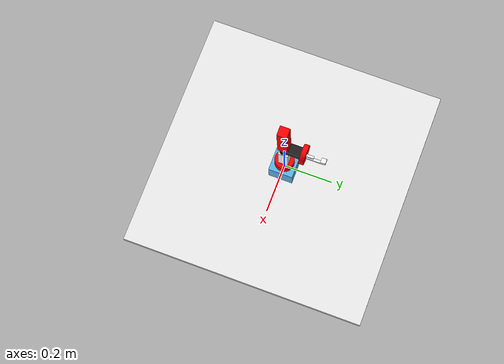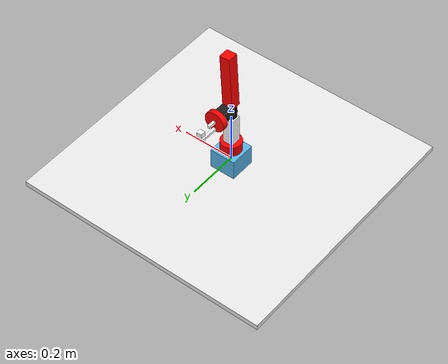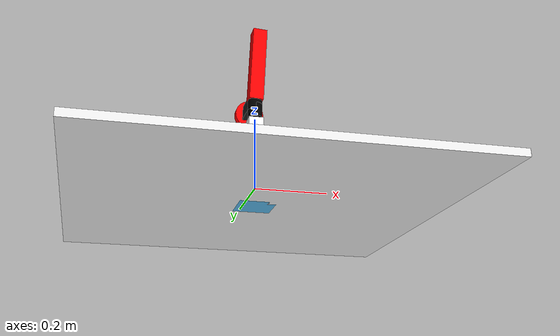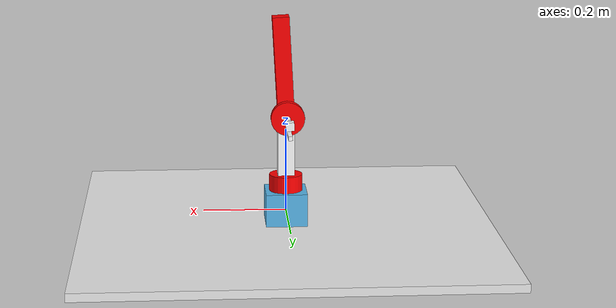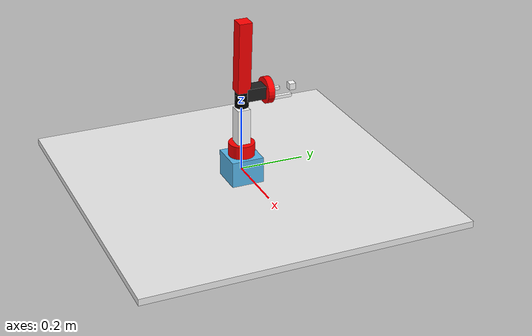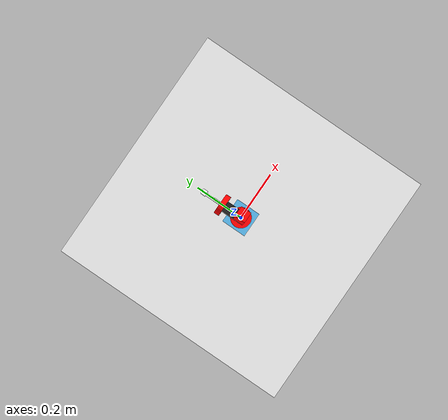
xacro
<?xml version="1.0"?>
<robot name="seven_dof_arm" xmlns:xacro="http://www.ros.org/wiki/xacro">

  <material name="Black">
	<color rgba="0 0 0 1"/>
  </material>

  <material name="Red">
	<color rgba="1 0 0 1"/>
  </material>

  <material name="White">
	<color rgba="1 1 1 1"/>
  </material>

  <xacro:property name="deg_to_rad" value="0.01745329251994329577"/>

  <!-- Constants -->
  <xacro:property name="M_SCALE" value="0.001 0.001 0.001 0.001"/>
  <xacro:property name="M_PI" value="3.14159265398979"/>

  <xacro:property name="shoulder_pan_width" value="0.04"/>
  <xacro:property name="shoulder_pan_len" value="0.08"/>

  <xacro:property name="shoulder_pitch_len" value="0.14"/>
  <xacro:property name="shoulder_pitch_width" value="0.04"/>
  <xacro:property name="shoulder_pitch_height" value="0.04"/>

  <xacro:property name="elbow_roll_width" value="0.02"/>
  <xacro:property name="elbow_roll_len" value="0.04"/>

  <xacro:property name="elbow_pitch_len" value="0.22"/>
  <xacro:property name="elbow_pitch_width" value="0.04"/>
  <xacro:property name="elbow_pitch_height" value="0.04"/>

  <xacro:property name="wrist_roll_width" value="0.02"/>
  <xacro:property name="wrist_roll_len" value="0.04"/>

  <xacro:property name="wrist_pitch_len" value="0.06"/>
  <xacro:property name="wrist_pitch_width" value="0.04"/>
  <xacro:property name="wrist_pitch_height" value="0.04"/>

  <xacro:property name="gripper_roll_width" value="0.04"/>
  <xacro:property name="gripper_roll_len" value="0.02"/>

  <xacro:property name="left_gripper_len" value="0.08"/>
  <xacro:property name="left_gripper_width" value="0.01"/>
  <xacro:property name="left_gripper_height" value="0.01"/>

  <xacro:property name="right_gripper_len" value="0.08"/>
  <xacro:property name="right_gripper_width" value="0.01"/>
  <xacro:property name="right_gripper_height" value="0.01"/>

  <xacro:property name="grasp_frame_len" value="0.02"/>
  <xacro:property name="grasp_frame_width" value="0.02"/>
  <xacro:property name="grasp_frame_height" value="0.02"/>

  <xacro:macro name="inertial_matrix" params="mass">
	<inertial>
	  <mass value="${mass}"/>
	  <inertia ixx="1.0" ixy="0.0" ixz="0.0" iyy="1.0" iyz="0.0" izz="1.0"/>
	</inertial>
  </xacro:macro>

  <xacro:macro name="transmission_block" params="joint_name">
	<transmission name="tran1">
	  <type>transmission_interface/SimpleTransmission</type>
	  <joint name="${joint_name}">
		<hardwareInterface>PositionJointInterface</hardwareInterface>
	  </joint>
	  <actuator name="motor1">
		<hardwareInterface>PositionJointInterface</hardwareInterface>
		<mechanicalReduction>1</mechanicalReduction>
	  </actuator>
	</transmission>
  </xacro:macro>
  <joint name="bottom_joint" type="fixed">
	<origin xyz="0 0 0" rpy="0 0 0"/>
	<parent link="base_link"/>
	<child link="bottom_link"/>
  </joint>

  <link name="bottom_link">
	<visual>
	  <origin xyz="0 0 -0.04" rpy="0 0 0"/>
	  <geometry>
		<box size="1 1 0.02"/>
	  </geometry>
	</visual>

	<collision>
	  <origin xyz="0 0 -0.04"/>
	  <geometry>
		<box size="1 1 0.02"/>
	  </geometry>
	</collision>
  </link>

  <gazebo reference="bottom_link">
	<material>Gazebo/White</material>
  </gazebo>

  <link name="base_link">
	<visual>
	  <origin xyz="0 0 0" rpy="${M_PI/2} 0 0"/>
	  <geometry>
		<box size="0.1 0.1 0.1"/>
	  </geometry>
	</visual>

	<collision>
	  <origin xyz="0 0 0" rpy="${M_PI/2} 0 0"/>
	  <geometry>
		<box size="0.1 0.1 0.1"/>
	  </geometry>
	</collision>
	<xacro:inertial_matrix mass="1"/>
  </link>

  <gazebo reference="bottom_link">
	<material>Gazebo/White</material>
  </gazebo>

  <joint name="shoulder_pan_joint" type="revolute">
	<parent link="base_link"/>
	<child link="shoulder_pan_link"/>
	<origin xyz="0 0 0.05" rpy="0 ${M_PI/2} 0"/>
	<axis xyz="-1 0 0"/>
	<limit effort="300" velocity="20" lower="-2.61799" upper="1.98394"/>
	<dynamics damping="50" friction="1"/>
  </joint>

  <link name="shoulder_pan_link">
	<visual>
	  <origin xyz="0 0 0" rpy="0 ${M_PI/2} 0"/>
	  <geometry>
		<cylinder radius="${shoulder_pan_width}" length="${shoulder_pan_len}"/>
	  </geometry>
	  <material name="Red"/>
	</visual>

	<collision>
	  <origin xyz="0 0 0" rpy="0 ${M_PI/2} 0"/>
	  <geometry>
		<cylinder radius="${shoulder_pan_width}" length="${shoulder_pan_len}"/>
	  </geometry>
	</collision>
	<xacro:inertial_matrix mass="1"/>
  </link>

  <gazebo reference="shoulder_pan_link">
	<material>Gazebo/Red</material>
  </gazebo>

  <joint name="shoulder_pitch_joint" type="revolute">
	<parent link="shoulder_pan_link"/>
	<child link="shoulder_pitch_link"/>
	<origin xyz="-0.041 0.0021 0.0" rpy="-${M_PI/2} 0 ${M_PI/2}"/>
	<axis xyz="1 0 0"/>
	<limit effort="300" velocity="1" lower="-1.1996" upper="1.8994"/>
	<dynamics dapming="50" friction="1"/>
  </joint>

  <link name="shoulder_pitch_link">
	<visual>
	  <origin xyz="-0.002 0 0.04" rpy="0 ${M_PI/2} 0"/>
	  <geometry>
		<box size="${shoulder_pitch_len} ${shoulder_pitch_width} ${shoulder_pitch_height}"/>
	  </geometry>
	  <material name="White"/>
	</visual>

	<collision>
	  <origin xyz="-0.002 0 0.04" rpy="0 ${M_PI/2} 0"/>
	  <geometry>
		<box size="${shoulder_pitch_len} ${shoulder_pitch_width} ${shoulder_pitch_height}"/>
	  </geometry>
	</collision>
	<xacro:inertial_matrix mass="1"/>
  </link>

  <gazebo reference="shoulder_pitch_link">
	<material>Gazebo/White</material>
  </gazebo>

  <joint name="elbow_roll_joint" type="revolute">
	<parent link="shoulder_pitch_link"/>
	<child link="elbow_roll_link"/>
	<origin xyz="-0.002 0 0.1206" rpy="${M_PI} ${M_PI/2} 0"/>
	<axis xyz="-1 0 0"/>
	<limit effort="300" velocity="1" lower="-2.61799" upper="0.70563"/>
	<dynamics damping="50" friction="1"/>
  </joint>

  <link name="elbow_roll_link">
	<visual>
	  <origin xyz="-0.015 0.0 -0.0" rpy="0 ${M_PI/2} 0"/>
	  <geometry>
		<cylinder radius="${elbow_roll_width}" length="${elbow_roll_len}"/>
	  </geometry>

	  <material name="Black"/>
	</visual>
	<collision>
	  <origin xyz="-0.015 0.0 -0.0" rpy="0 ${M_PI/2} 0"/>
	  <geometry>
		<cylinder radius="${elbow_roll_width}" length="${elbow_roll_len}"/>
	  </geometry>
	</collision>
	<xacro:inertial_matrix mass="1"/>
  </link>

  <gazebo reference="elbow_roll_link">
	<material>Gazebo/Black</material>
  </gazebo>

  <joint name="elbow_pitch_joint" type="revolute">
	<parent link="elbow_roll_link"/>
	<child link="elbow_pitch_link"/>
	<origin xyz="-0.035 0 0" rpy="0.055 ${M_PI/2} 0"/>
	<axis xyz="1 0 0"/>
	<limit effort="300" velocity="1" lower="-1.59534" upper="1.9328"/>
	<dynamics damping="50" friction="1"/>
  </joint>

  <link name="elbow_pitch_link">
	<visual>
	  <origin xyz="0.0 0.0 -0.12" rpy="0 ${M_PI/2} 0"/>
	  <geometry>
		<box size="${elbow_pitch_len} ${elbow_pitch_width} ${elbow_pitch_height}"/>
	  </geometry>
	  <material name="Red"/>
	</visual>

	<collision>
	  <origin xyz="0 0 -0.12" rpy="0 ${M_PI/2} 0"/>
	  <geometry>
		<box size="${elbow_pitch_len} ${elbow_pitch_width} ${elbow_pitch_height}"/>
	  </geometry>
	</collision>
	<xacro:inertial_matrix mass="1"/>
  </link>

  <gazebo reference="elbow_pitch_link">
	<material>Gazebo/Red</material>
  </gazebo>

  <joint name="wrist_roll_joint" type="revolute">
	<parent link="elbow_pitch_link"/>
	<child link="wrist_roll_link"/>
	<origi xyz="0.0 0.0081 -0.248" rpy="0 ${M_PI/2} ${M_PI}"/>
	<axis xyz="1 0 0"/>
	<limit effort="300" velocity="1" lower="-2.61799" upper="2.61288"/>
	<dynamics damping="50" friction="1"/>
  </joint>

  <link name="wrist_roll_link">
	<visual>
	  <orign xyz="0 0 0" rpy="0 ${M_PI/2} 0"/>
	  <geometry>
		<cylinder radius="${elbow_roll_width}" length="${elbow_roll_len}"/>
	  </geometry>
	  <material name="Black"/>
	</visual>
	<collision>
	  <origin xyz="0 0 0" rpy="0 ${M_PI/2} 0"/>
	  <geometry>
		<cylinder radius="${elbow_roll_width}" length="${elbow_roll_len}"/>
	  </geometry>
	</collision>
	<xacro:inertial_matrix mass="1"/>
  </link>

  <gazebo reference="wrist_roll_link">
	<material>Gazebo/Black</material>
  </gazebo>

  <joint name="wrist_pitch_joint" type="revolute">
	<parent link="wrist_roll_link"/>
	<child link="wrist_pitch_link"/>
	<origin xyz="0 0 0.0001" rpy="0 ${M_PI/2} 0"/>
	<axis xyz="1 0 0"/>
	<limit effort="300" velocity="1" lower="-1.59534" upper="1.98394"/>
	<dynamics damping="50" friction="1"/>
  </joint>

  <link name="wrist_pitch_link">
	<visual>
	  <origin xyz="0 0 0.04" rpy="0 ${M_PI/2} 0"/>
	  <geometry>
		<box size="${wrist_pitch_len} ${wrist_pitch_width} ${wrist_pitch_height}"/>
	  </geometry>
	</visual>
	<material name="White"/>

	<collision>
	  <origin xyz="0 0 0.04" rpy="0 ${M_PI/2} 0"/>
	  <geometry>
		<box size="{wrist_pitch_len} ${wrist_pitch_width} ${wrist_pitch_height}"/>
	  </geometry>
	</collision>
	<xacro:inertial_matrix mass="1"/>
  </link>

  <gazebo reference="wrist_pitch_link">
	<material>Gazebo/Black</material>
  </gazebo>

  <joint name="gripper_roll_joint" type="revolute">
	<parent link="wrist_pitch_link"/>
	<child link="gripper_roll_link"/>
	<origin xyz="0 0 0.08" rpy="${1.5*M_PI} -${0.5*M_PI} 0"/>
	<axis xyz="1 0 0"/>
	<limit effort="300" velocity="1" lower="-2.617993" upper="2.61288"/>
	<dynamics damping="50" friction="1"/>
  </joint>

  <link name="gripper_roll_link">
	<visual>
	  <origin xyz="0 0 0" rpy="0 ${M_PI/2} 0"/>
	  <geometry>
		<cylinder radius="${gripper_roll_width}" length="${gripper_roll_len}"/>
	  </geometry>
	  <material name="Red"/>
	</visual>
	<collision>
	  <origin xyz="0 0 0" rpy="0 ${M_PI/2} 0"/>
	  <geometry>
		<cylinder radius="${gripper_roll_width}" length="${gripper_roll_len}"/>
	  </geometry>
	</collision>
	<xacro:inertial_matrix mass="1"/>
  </link>

  <gazebo reference="gripper_roll_link">
	<visual>
	  <origin xyz="0 0 0" rpy="0 ${M_PI/2} 0"/>
	  <geometry>
		<cylinder radius="${gripper_roll_width}" length="${gripper_roll_len}"/>
	  </geometry>
	  <material name="Red"/>
	</visual>
	<collision>
	  <origin xyz="0 0 0" rpy="0 ${M_PI/2} 0"/>
	  <geometry>
		<cylinder radius="${gripper_roll_width}" length="${gripper_roll_len}"/>
	  </geometry>
	</collision>
	<xacro:inertial_matrix mass="1"/>
  </gazebo>

  <joint name="finger_joint1" type="prismatic">
	<parent link="gripper_roll_link"/>
	<child link="gripper_finger_link1"/>
	<origin xyz="0 0 0"/>
	<axis xyz="0 1 0"/>
	<limit effort="300" lower="0" upper="0.03" velocity="1.0"/>

	<safety_controller k_position="20"
					   k_velocity="20"
					   soft_lower_limit="${-0.15}"
					   soft_upper_limit="${0.0}"/>
	<dynamics damping="50" friction="1"/>
  </joint>

  <link name="gripper_finger_link1">
	<visual>
	  <origin xyz="0.04 -0.03 0"/>
	  <geometry>
		<box size="${left_gripper_len} ${left_gripper_width} ${left_gripper_height}"/>
	  </geometry>
	  <material name="White"/>
	</visual>
	<xacro:inertial_matrix mass="1"/>
  </link>

  <gazebo reference="bottom_link">
	<material>Gazebo/White</material>
  </gazebo>

  <joint name="finger_jiont2" type="prismatic">
	<parent link="gripper_roll_link"/>
	<child link="gripper_finger_link2"/>
	<origin xyz="0 0 0"/>
	<axis xyz="0 1 0"/>
	<limit effort="1" lower="-0.03" upper="0" velocity="1.0"/>
	<dynamics damping="50" friction="1"/>
  </joint>

  <link name="gripper_finger_link2">
	<visual>
	  <orign xyz="0.04 0.03 0"/>
	  <geometry>
		<box size="${right_gripper_len} ${right_gripper_width} ${right_gripper_height}"/>
	  </geometry>
	  <material name="White"/>
	</visual>
	<xacro:inertial_matrix mass="1"/>
  </link>

  <gazebo reference="bottom_link">
	<material>Gazebo/White</material>
  </gazebo>

  <link name="grasping_frame">
	<iertial>
	  <origin xyz="0 0 0" rpy="0 0 0"/>
	  <mass value="0.0001"/>
	  <cuboid_inertia mass="0.0001" x="0.001" y="0.001" z="0.001"/>
	  <inertia ixx="1.0" ixy="0.0" ixz="0.0" iyy="100.0" iyz="0.0" izz="1.0"/>
	</iertial>

	<visual>
	  <origin xyz="0 0 0"/>
	  <geometry>
		<box size="${grasp_frame_len} ${grasp_frame_width} ${grasp_frame_height}"/>
	  </geometry>

	  <material name="White"/>
	</visual>
  </link>

  <joint name="grasping_frame_joint" type="fixed">
	<parent link="gripper_roll_link"/>
	<child link="grasping_frame"/>
	<origin xyz="0.08 0 0" rpy="0 0 0"/>
  </joint>

  <xacro:include filename="$(find mastering_ros_robot_description_pkg)/urdf/sensors/xtion_pro_live.urdf.xacro"/>

  <!-- Transmissions for ROS control-->
  <xacro:transmission_block joint_name="shoulder_pan_joint"/>
  <xacro:transmission_block joint_name="shoulder_pitch_joint"/>
  <xacro:transmission_block joint_name="elbow_roll_joint"/>
  <xacro:transmission_block joint_name="elbow_pitch_joint"/>
  <xacro:transmission_block joint_name="wrist_roll_joint"/>
  <xacro:transmission_block joint_name="wrist_pitch_joint"/>
  <xacro:transmission_block joint_name="gripper_roll_joint"/>
  <xacro:transmission_block joint_name="finger_joint1"/>
  <xacro:transmission_block joint_name="finger_joint2"/>

  <gazebo>
	<plugin name="gazebo_ros_control" filename="libgazebo_ros_control.so">
	  <robotNamespace>/seven_dof_arm</robotNamespace>
	</plugin>
  </gazebo>
</robot>
